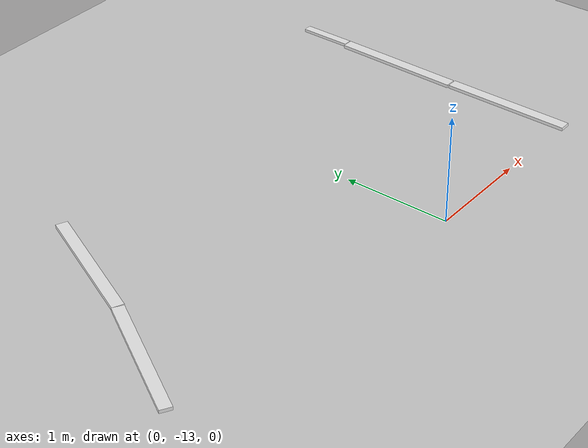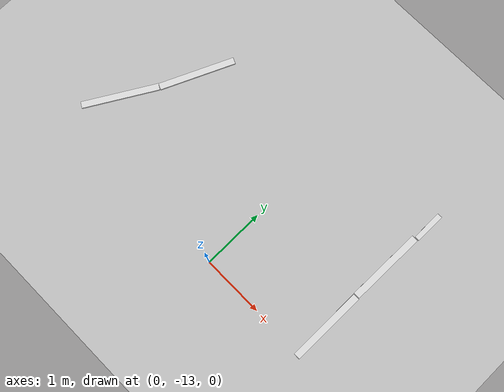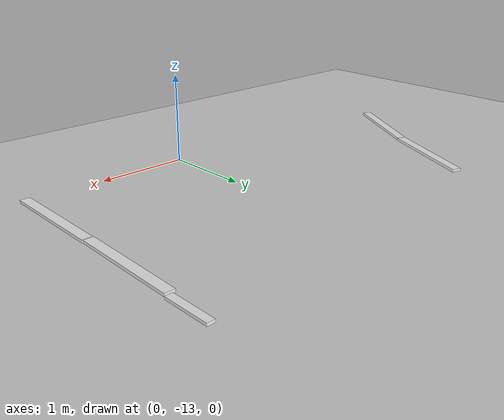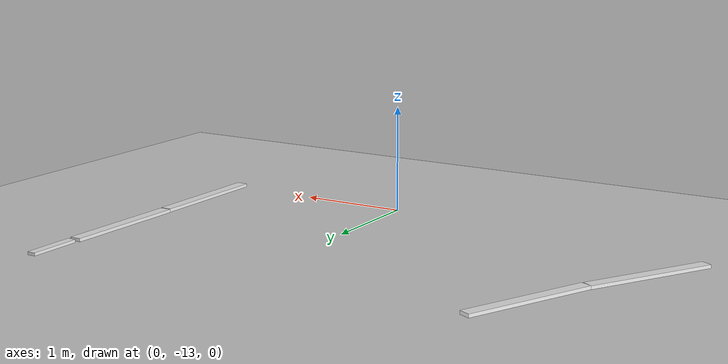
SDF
<sdf version="1.7">
 <world name="default">
  <model name="ground_plane">
   <static>1</static>
   <link name="link">
    <collision name="collision">
     <geometry><plane><normal>0 0 1</normal><size>100 100</size></plane></geometry>
     <surface><friction><ode><mu>100</mu><mu2>50</mu2></ode></friction></surface>
    </collision>
    <visual name="visual">
     <cast_shadows>0</cast_shadows>
     <geometry><plane><normal>0 0 1</normal><size>100 100</size></plane></geometry>
     <material>
      <script><uri>file://media/materials/scripts/gazebo.material</uri><name>Gazebo/Grey</name></script>
     </material>
    </visual>
   </link>
  </model>
  <model name="road_way_1_clone_clone_clone_0_clone_0_clone_clone_1_clone_clone_0_clone_0_clone_1">
   <link name="link">
    <inertial>
     <mass>1</mass>
     <inertia>
      <ixx>0.166667</ixx>
      <ixy>0</ixy>
      <ixz>0</ixz>
      <iyy>0.166667</iyy>
      <iyz>0</iyz>
      <izz>0.166667</izz>
     </inertia>
    </inertial>
    <visual name="visual">
     <geometry><box><size>0.106644 1.22348 0.03129</size></box></geometry>
     <material>
      <script><name>Gazebo/White</name><uri>file://media/materials/scripts/gazebo.material</uri></script>
      <shader type="pixel"><normal_map>__default__</normal_map></shader>
      <ambient>1 1 1 1</ambient>
      <diffuse>1 1 1 1</diffuse>
      <specular>0 0 0 1</specular>
      <emissive>0 0 0 1</emissive>
     </material>
    </visual>
    <collision name="collision">
     <geometry><box><size>0.10644 1.22348 0.03129</size></box></geometry>
     <surface>
      <friction>
       <ode><mu>1</mu><mu2>1</mu2><fdir1>0 0 0</fdir1><slip1>0</slip1><slip2>0</slip2></ode>
       <torsional>
        <coefficient>1</coefficient>
        <patch_radius>0</patch_radius>
        <surface_radius>0</surface_radius>
        <use_patch_radius>1</use_patch_radius>
        <ode><slip>0</slip></ode>
       </torsional>
      </friction>
      <bounce><restitution_coefficient>0</restitution_coefficient><threshold>1e+06</threshold></bounce>
      <contact>
       <collide_without_contact>0</collide_without_contact>
       <collide_without_contact_bitmask>1</collide_without_contact_bitmask>
       <collide_bitmask>1</collide_bitmask>
       <ode>
        <soft_cfm>0</soft_cfm>
        <soft_erp>0.2</soft_erp>
        <kp>1e+13</kp>
        <kd>1</kd>
        <max_vel>0.01</max_vel>
        <min_depth>0</min_depth>
       </ode>
       <bullet>
        <split_impulse>1</split_impulse>
        <split_impulse_penetration_threshold>-0.01</split_impulse_penetration_threshold>
        <soft_cfm>0</soft_cfm>
        <soft_erp>0.2</soft_erp>
        <kp>1e+13</kp>
        <kd>1</kd>
       </bullet>
      </contact>
     </surface>
    </collision>
   </link>
   <static>0</static>
   <pose>-2.80827 -12.1917 0.015638 -1.1e-05 -0 2.60999</pose>
  </model>
  <model name="road_way_1_clone_clone_clone_0_clone_0_clone_clone_1_clone_clone_0_clone_0_clone_2">
   <link name="link">
    <inertial>
     <mass>1</mass>
     <inertia>
      <ixx>0.166667</ixx>
      <ixy>0</ixy>
      <ixz>0</ixz>
      <iyy>0.166667</iyy>
      <iyz>0</iyz>
      <izz>0.166667</izz>
     </inertia>
    </inertial>
    <visual name="visual">
     <geometry><box><size>0.106644 1.22348 0.03129</size></box></geometry>
     <material>
      <script><name>Gazebo/White</name><uri>file://media/materials/scripts/gazebo.material</uri></script>
      <shader type="pixel"><normal_map>__default__</normal_map></shader>
      <ambient>1 1 1 1</ambient>
      <diffuse>1 1 1 1</diffuse>
      <specular>0 0 0 1</specular>
      <emissive>0 0 0 1</emissive>
     </material>
    </visual>
    <collision name="collision">
     <geometry><box><size>0.10644 1.22348 0.03129</size></box></geometry>
     <surface>
      <friction>
       <ode><mu>1</mu><mu2>1</mu2><fdir1>0 0 0</fdir1><slip1>0</slip1><slip2>0</slip2></ode>
       <torsional>
        <coefficient>1</coefficient>
        <patch_radius>0</patch_radius>
        <surface_radius>0</surface_radius>
        <use_patch_radius>1</use_patch_radius>
        <ode><slip>0</slip></ode>
       </torsional>
      </friction>
      <bounce><restitution_coefficient>0</restitution_coefficient><threshold>1e+06</threshold></bounce>
      <contact>
       <collide_without_contact>0</collide_without_contact>
       <collide_without_contact_bitmask>1</collide_without_contact_bitmask>
       <collide_bitmask>1</collide_bitmask>
       <ode>
        <soft_cfm>0</soft_cfm>
        <soft_erp>0.2</soft_erp>
        <kp>1e+13</kp>
        <kd>1</kd>
        <max_vel>0.01</max_vel>
        <min_depth>0</min_depth>
       </ode>
       <bullet>
        <split_impulse>1</split_impulse>
        <split_impulse_penetration_threshold>-0.01</split_impulse_penetration_threshold>
        <soft_cfm>0</soft_cfm>
        <soft_erp>0.2</soft_erp>
        <kp>1e+13</kp>
        <kd>1</kd>
       </bullet>
      </contact>
     </surface>
    </collision>
   </link>
   <static>0</static>
   <pose>-2.24082 -11.1035 0.015638 -1.1e-05 0 2.71828</pose>
  </model>
  <model name="road_way_1_clone_clone_clone_0_clone_0_clone_clone_1_clone_clone_0_clone_1_clone_clone_clone_clone_clone">
   <link name="link">
    <inertial>
     <mass>1</mass>
     <inertia>
      <ixx>0.166667</ixx>
      <ixy>0</ixy>
      <ixz>0</ixz>
      <iyy>0.166667</iyy>
      <iyz>0</iyz>
      <izz>0.166667</izz>
     </inertia>
    </inertial>
    <visual name="visual">
     <geometry><box><size>0.106644 1.22348 0.03129</size></box></geometry>
     <material>
      <script><name>Gazebo/White</name><uri>file://media/materials/scripts/gazebo.material</uri></script>
      <shader type="pixel"><normal_map>__default__</normal_map></shader>
      <ambient>1 1 1 1</ambient>
      <diffuse>1 1 1 1</diffuse>
      <specular>0 0 0 1</specular>
      <emissive>0 0 0 1</emissive>
     </material>
    </visual>
    <collision name="collision">
     <geometry><box><size>0.10644 1.22348 0.03129</size></box></geometry>
     <surface>
      <friction>
       <ode><mu>1</mu><mu2>1</mu2><fdir1>0 0 0</fdir1><slip1>0</slip1><slip2>0</slip2></ode>
       <torsional>
        <coefficient>1</coefficient>
        <patch_radius>0</patch_radius>
        <surface_radius>0</surface_radius>
        <use_patch_radius>1</use_patch_radius>
        <ode><slip>0</slip></ode>
       </torsional>
      </friction>
      <bounce><restitution_coefficient>0</restitution_coefficient><threshold>1e+06</threshold></bounce>
      <contact>
       <collide_without_contact>0</collide_without_contact>
       <collide_without_contact_bitmask>1</collide_without_contact_bitmask>
       <collide_bitmask>1</collide_bitmask>
       <ode>
        <soft_cfm>0</soft_cfm>
        <soft_erp>0.2</soft_erp>
        <kp>1e+13</kp>
        <kd>1</kd>
        <max_vel>0.01</max_vel>
        <min_depth>0</min_depth>
       </ode>
       <bullet>
        <split_impulse>1</split_impulse>
        <split_impulse_penetration_threshold>-0.01</split_impulse_penetration_threshold>
        <soft_cfm>0</soft_cfm>
        <soft_erp>0.2</soft_erp>
        <kp>1e+13</kp>
        <kd>1</kd>
       </bullet>
      </contact>
     </surface>
    </collision>
   </link>
   <static>0</static>
   <pose>1.86432 -12.4386 0.015638 1.1e-05 0 3.13441</pose>
  </model>
  <model name="road_way_1_clone_clone_clone_0_clone_0_clone_clone_1_clone_clone_0_clone_1_clone_clone_clone_clone_clone_clone">
   <link name="link">
    <inertial>
     <mass>1</mass>
     <inertia>
      <ixx>0.166667</ixx>
      <ixy>0</ixy>
      <ixz>0</ixz>
      <iyy>0.166667</iyy>
      <iyz>0</iyz>
      <izz>0.166667</izz>
     </inertia>
    </inertial>
    <visual name="visual">
     <geometry><box><size>0.106644 1.22348 0.03129</size></box></geometry>
     <material>
      <script><name>Gazebo/White</name><uri>file://media/materials/scripts/gazebo.material</uri></script>
      <shader type="pixel"><normal_map>__default__</normal_map></shader>
      <ambient>1 1 1 1</ambient>
      <diffuse>1 1 1 1</diffuse>
      <specular>0 0 0 1</specular>
      <emissive>0 0 0 1</emissive>
     </material>
    </visual>
    <collision name="collision">
     <geometry><box><size>0.10644 1.22348 0.03129</size></box></geometry>
     <surface>
      <friction>
       <ode><mu>1</mu><mu2>1</mu2><fdir1>0 0 0</fdir1><slip1>0</slip1><slip2>0</slip2></ode>
       <torsional>
        <coefficient>1</coefficient>
        <patch_radius>0</patch_radius>
        <surface_radius>0</surface_radius>
        <use_patch_radius>1</use_patch_radius>
        <ode><slip>0</slip></ode>
       </torsional>
      </friction>
      <bounce><restitution_coefficient>0</restitution_coefficient><threshold>1e+06</threshold></bounce>
      <contact>
       <collide_without_contact>0</collide_without_contact>
       <collide_without_contact_bitmask>1</collide_without_contact_bitmask>
       <collide_bitmask>1</collide_bitmask>
       <ode>
        <soft_cfm>0</soft_cfm>
        <soft_erp>0.2</soft_erp>
        <kp>1e+13</kp>
        <kd>1</kd>
        <max_vel>0.01</max_vel>
        <min_depth>0</min_depth>
       </ode>
       <bullet>
        <split_impulse>1</split_impulse>
        <split_impulse_penetration_threshold>-0.01</split_impulse_penetration_threshold>
        <soft_cfm>0</soft_cfm>
        <soft_erp>0.2</soft_erp>
        <kp>1e+13</kp>
        <kd>1</kd>
       </bullet>
      </contact>
     </surface>
    </collision>
   </link>
   <static>0</static>
   <pose>1.87234 -11.2042 0.015638 -1.1e-05 -0 3.12514</pose>
  </model>
  <model name="road_way2_0">
   <link name="link">
    <inertial>
     <mass>1</mass>
     <inertia>
      <ixx>0.166667</ixx>
      <ixy>0</ixy>
      <ixz>0</ixz>
      <iyy>0.166667</iyy>
      <iyz>0</iyz>
      <izz>0.166667</izz>
     </inertia>
    </inertial>
    <visual name="visual">
     <geometry><box><size>0.08 0.5 0.03129</size></box></geometry>
     <material>
      <script><name>Gazebo/White</name><uri>file://media/materials/scripts/gazebo.material</uri></script>
      <shader type="pixel"><normal_map>__default__</normal_map></shader>
      <ambient>1 1 1 1</ambient>
      <diffuse>1 1 1 1</diffuse>
      <specular>0 0 0 1</specular>
      <emissive>0 0 0 1</emissive>
     </material>
    </visual>
    <collision name="collision">
     <geometry><box><size>0.01644 0.01348 0.0129</size></box></geometry>
     <surface>
      <friction>
       <ode><mu>1</mu><mu2>1</mu2><fdir1>0 0 0</fdir1><slip1>0</slip1><slip2>0</slip2></ode>
       <torsional>
        <coefficient>1</coefficient>
        <patch_radius>0</patch_radius>
        <surface_radius>0</surface_radius>
        <use_patch_radius>1</use_patch_radius>
        <ode><slip>0</slip></ode>
       </torsional>
      </friction>
      <bounce><restitution_coefficient>0</restitution_coefficient><threshold>1e+06</threshold></bounce>
      <contact>
       <collide_without_contact>0</collide_without_contact>
       <collide_without_contact_bitmask>1</collide_without_contact_bitmask>
       <collide_bitmask>1</collide_bitmask>
       <ode>
        <soft_cfm>0</soft_cfm>
        <soft_erp>0.2</soft_erp>
        <kp>1e+13</kp>
        <kd>1</kd>
        <max_vel>0.01</max_vel>
        <min_depth>0</min_depth>
       </ode>
       <bullet>
        <split_impulse>1</split_impulse>
        <split_impulse_penetration_threshold>-0.01</split_impulse_penetration_threshold>
        <soft_cfm>0</soft_cfm>
        <soft_erp>0.2</soft_erp>
        <kp>1e+13</kp>
        <kd>1</kd>
       </bullet>
      </contact>
     </surface>
    </collision>
   </link>
   <static>0</static>
   <pose>1.9085 -10.3239 0.00645 1.2e-05 2e-06 3e-06</pose>
  </model>
 </world>
</sdf>
